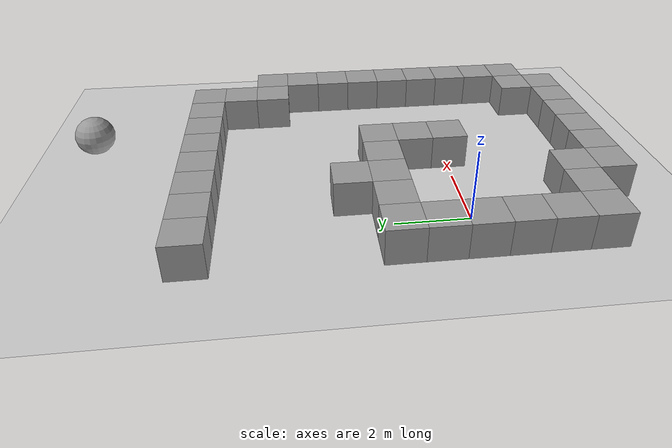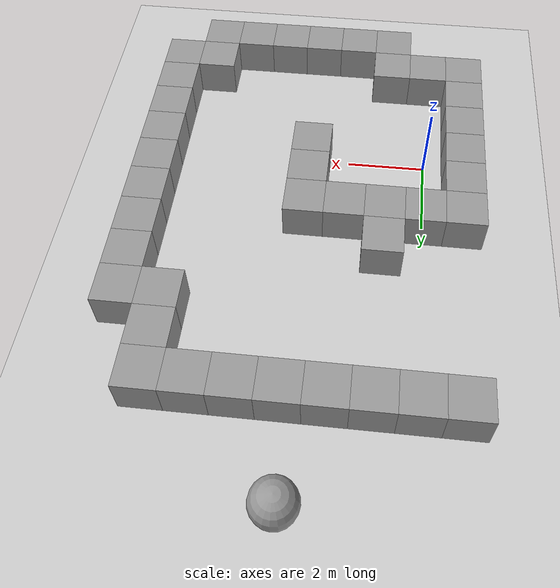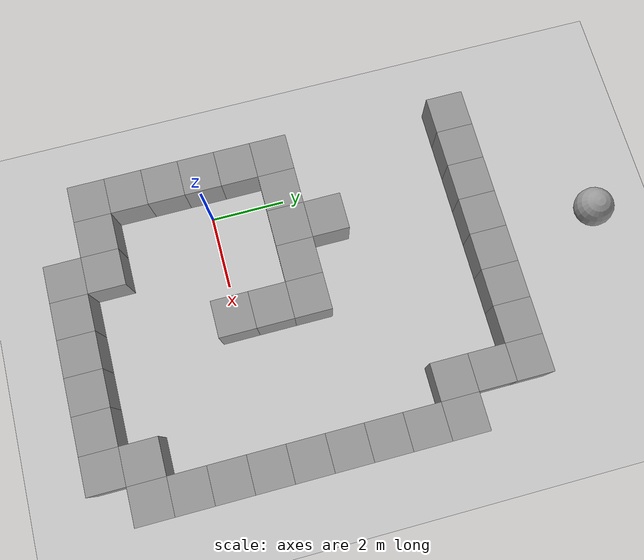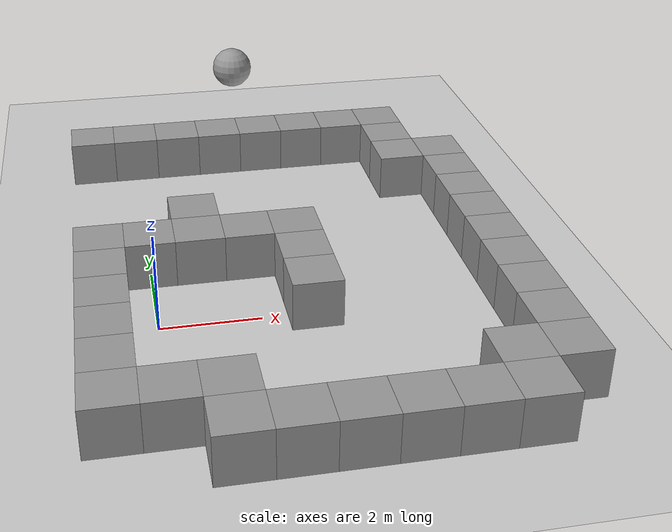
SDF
<sdf version="1.4">
 <world name="default">
  <light name="sun" type="directional">
   <pose>0 0 10 0 -0 0</pose>
   <diffuse>0.8 0.8 0.8 1</diffuse>
   <specular>0.2 0.2 0.2 1</specular>
   <attenuation>
    <range>1000</range>
    <constant>0.9</constant>
    <linear>0.01</linear>
    <quadratic>0.001</quadratic>
   </attenuation>
   <direction>-0.5 0.1 -0.9</direction>
  </light>
  <model name="ground_plane">
   <static>1</static>
   <link name="link">
    <collision name="collision">
     <geometry><plane><normal>0 0 1</normal><size>100 100</size></plane></geometry>
     <surface><friction><ode><mu>100</mu><mu2>50</mu2></ode></friction></surface>
    </collision>
    <visual name="visual">
     <cast_shadows>0</cast_shadows>
     <geometry><plane><normal>0 0 1</normal><size>100 100</size></plane></geometry>
     <material>
      <script><uri>file://media/materials/scripts/gazebo.material</uri><name>Gazebo/Grey</name></script>
     </material>
    </visual>
    <velocity_decay><linear>0</linear><angular>0</angular></velocity_decay>
   </link>
  </model>
  <physics type="ode">
   <max_step_size>0.001</max_step_size>
   <real_time_factor>1</real_time_factor>
   <real_time_update_rate>1000</real_time_update_rate>
   <gravity>0 0 -9.8</gravity>
  </physics>
  <scene><ambient>0.4 0.4 0.4 1</ambient><background>0.7 0.7 0.7 1</background><shadows>1</shadows></scene>
  <spherical_coordinates>
   <surface_model>EARTH_WGS84</surface_model>
   <latitude_deg>0</latitude_deg>
   <longitude_deg>0</longitude_deg>
   <elevation>0</elevation>
   <heading_deg>0</heading_deg>
  </spherical_coordinates>
  <model name="unit_box_4_0">
   <pose>-1 1.00001 0.5 0 -0 4e-06</pose>
   <link name="link">
    <inertial>
     <mass>1</mass>
     <inertia><ixx>1</ixx><ixy>0</ixy><ixz>0</ixz><iyy>1</iyy><iyz>0</iyz><izz>1</izz></inertia>
    </inertial>
    <collision name="collision"><geometry><box><size>1 1 1</size></box></geometry></collision>
    <visual name="visual">
     <geometry><box><size>1 1 1</size></box></geometry>
     <material>
      <script><uri>file://media/materials/scripts/gazebo.material</uri><name>Gazebo/Grey</name></script>
     </material>
    </visual>
    <velocity_decay><linear>0</linear><angular>0</angular></velocity_decay>
   </link>
   <static>1</static>
  </model>
  <model name="unit_box_5_0">
   <pose>-0.999998 5e-06 0.5 0 -0 2e-06</pose>
   <link name="link">
    <inertial>
     <mass>1</mass>
     <inertia><ixx>1</ixx><ixy>0</ixy><ixz>0</ixz><iyy>1</iyy><iyz>0</iyz><izz>1</izz></inertia>
    </inertial>
    <collision name="collision"><geometry><box><size>1 1 1</size></box></geometry></collision>
    <visual name="visual">
     <geometry><box><size>1 1 1</size></box></geometry>
     <material>
      <script><uri>file://media/materials/scripts/gazebo.material</uri><name>Gazebo/Grey</name></script>
     </material>
    </visual>
    <velocity_decay><linear>0</linear><angular>0</angular></velocity_decay>
   </link>
   <static>1</static>
  </model>
  <model name="unit_box_6_0">
   <pose>-0.999999 -0.999997 0.5 0 -0 1e-06</pose>
   <link name="link">
    <inertial>
     <mass>1</mass>
     <inertia><ixx>1</ixx><ixy>0</ixy><ixz>0</ixz><iyy>1</iyy><iyz>0</iyz><izz>1</izz></inertia>
    </inertial>
    <collision name="collision"><geometry><box><size>1 1 1</size></box></geometry></collision>
    <visual name="visual">
     <geometry><box><size>1 1 1</size></box></geometry>
     <material>
      <script><uri>file://media/materials/scripts/gazebo.material</uri><name>Gazebo/Grey</name></script>
     </material>
    </visual>
    <velocity_decay><linear>0</linear><angular>0</angular></velocity_decay>
   </link>
   <static>1</static>
  </model>
  <model name="unit_box_10_0">
   <pose>-1 2.00001 0.5 0 -0 5e-06</pose>
   <link name="link">
    <inertial>
     <mass>1</mass>
     <inertia><ixx>1</ixx><ixy>0</ixy><ixz>0</ixz><iyy>1</iyy><iyz>0</iyz><izz>1</izz></inertia>
    </inertial>
    <collision name="collision"><geometry><box><size>1 1 1</size></box></geometry></collision>
    <visual name="visual">
     <geometry><box><size>1 1 1</size></box></geometry>
     <material>
      <script><uri>file://media/materials/scripts/gazebo.material</uri><name>Gazebo/Grey</name></script>
     </material>
    </visual>
    <velocity_decay><linear>0</linear><angular>0</angular></velocity_decay>
   </link>
   <static>1</static>
  </model>
  <model name="unit_box_11_0">
   <pose>-0.999995 -2 0.5 0 -0 4e-06</pose>
   <link name="link">
    <inertial>
     <mass>1</mass>
     <inertia><ixx>1</ixx><ixy>0</ixy><ixz>0</ixz><iyy>1</iyy><iyz>0</iyz><izz>1</izz></inertia>
    </inertial>
    <collision name="collision"><geometry><box><size>1 1 1</size></box></geometry></collision>
    <visual name="visual">
     <geometry><box><size>1 1 1</size></box></geometry>
     <material>
      <script><uri>file://media/materials/scripts/gazebo.material</uri><name>Gazebo/Grey</name></script>
     </material>
    </visual>
    <velocity_decay><linear>0</linear><angular>0</angular></velocity_decay>
   </link>
   <static>1</static>
  </model>
  <model name="unit_box_12_0">
   <pose>-3e-06 2 0.5 0 -0 5e-06</pose>
   <link name="link">
    <inertial>
     <mass>1</mass>
     <inertia><ixx>1</ixx><ixy>0</ixy><ixz>0</ixz><iyy>1</iyy><iyz>0</iyz><izz>1</izz></inertia>
    </inertial>
    <collision name="collision"><geometry><box><size>1 1 1</size></box></geometry></collision>
    <visual name="visual">
     <geometry><box><size>1 1 1</size></box></geometry>
     <material>
      <script><uri>file://media/materials/scripts/gazebo.material</uri><name>Gazebo/Grey</name></script>
     </material>
    </visual>
    <velocity_decay><linear>0</linear><angular>0</angular></velocity_decay>
   </link>
   <static>1</static>
  </model>
  <model name="unit_box_13_0">
   <pose>0.999999 2 0.5 0 -0 2e-06</pose>
   <link name="link">
    <inertial>
     <mass>1</mass>
     <inertia><ixx>1</ixx><ixy>0</ixy><ixz>0</ixz><iyy>1</iyy><iyz>0</iyz><izz>1</izz></inertia>
    </inertial>
    <collision name="collision"><geometry><box><size>1 1 1</size></box></geometry></collision>
    <visual name="visual">
     <geometry><box><size>1 1 1</size></box></geometry>
     <material>
      <script><uri>file://media/materials/scripts/gazebo.material</uri><name>Gazebo/Grey</name></script>
     </material>
    </visual>
    <velocity_decay><linear>0</linear><angular>0</angular></velocity_decay>
   </link>
   <static>1</static>
  </model>
  <model name="unit_box_14_0">
   <pose>2 2 0.5 0 -0 2e-06</pose>
   <link name="link">
    <inertial>
     <mass>1</mass>
     <inertia><ixx>1</ixx><ixy>0</ixy><ixz>0</ixz><iyy>1</iyy><iyz>0</iyz><izz>1</izz></inertia>
    </inertial>
    <collision name="collision"><geometry><box><size>1 1 1</size></box></geometry></collision>
    <visual name="visual">
     <geometry><box><size>1 1 1</size></box></geometry>
     <material>
      <script><uri>file://media/materials/scripts/gazebo.material</uri><name>Gazebo/Grey</name></script>
     </material>
    </visual>
    <velocity_decay><linear>0</linear><angular>0</angular></velocity_decay>
   </link>
   <static>1</static>
  </model>
  <model name="unit_box_15_0">
   <pose>3 2 0.5 0 -0 1e-06</pose>
   <link name="link">
    <inertial>
     <mass>1</mass>
     <inertia><ixx>1</ixx><ixy>0</ixy><ixz>0</ixz><iyy>1</iyy><iyz>0</iyz><izz>1</izz></inertia>
    </inertial>
    <collision name="collision"><geometry><box><size>1 1 1</size></box></geometry></collision>
    <visual name="visual">
     <geometry><box><size>1 1 1</size></box></geometry>
     <material>
      <script><uri>file://media/materials/scripts/gazebo.material</uri><name>Gazebo/Grey</name></script>
     </material>
    </visual>
    <velocity_decay><linear>0</linear><angular>0</angular></velocity_decay>
   </link>
   <static>1</static>
  </model>
  <model name="unit_box_16">
   <pose>3 0.999999 0.5 0 -0 0</pose>
   <link name="link">
    <inertial>
     <mass>1</mass>
     <inertia><ixx>1</ixx><ixy>0</ixy><ixz>0</ixz><iyy>1</iyy><iyz>0</iyz><izz>1</izz></inertia>
    </inertial>
    <collision name="collision"><geometry><box><size>1 1 1</size></box></geometry></collision>
    <visual name="visual">
     <geometry><box><size>1 1 1</size></box></geometry>
     <material>
      <script><uri>file://media/materials/scripts/gazebo.material</uri><name>Gazebo/Grey</name></script>
     </material>
    </visual>
    <velocity_decay><linear>0</linear><angular>0</angular></velocity_decay>
   </link>
   <static>1</static>
  </model>
  <model name="unit_box_17_0">
   <pose>3 -2e-06 0.5 0 -0 1e-06</pose>
   <link name="link">
    <inertial>
     <mass>1</mass>
     <inertia><ixx>1</ixx><ixy>0</ixy><ixz>0</ixz><iyy>1</iyy><iyz>0</iyz><izz>1</izz></inertia>
    </inertial>
    <collision name="collision"><geometry><box><size>1 1 1</size></box></geometry></collision>
    <visual name="visual">
     <geometry><box><size>1 1 1</size></box></geometry>
     <material>
      <script><uri>file://media/materials/scripts/gazebo.material</uri><name>Gazebo/Grey</name></script>
     </material>
    </visual>
    <velocity_decay><linear>0</linear><angular>0</angular></velocity_decay>
   </link>
   <static>1</static>
  </model>
  <model name="unit_box_18_0">
   <pose>-1.00001 -3 0.5 0 -0 3e-06</pose>
   <link name="link">
    <inertial>
     <mass>1</mass>
     <inertia><ixx>1</ixx><ixy>0</ixy><ixz>0</ixz><iyy>1</iyy><iyz>0</iyz><izz>1</izz></inertia>
    </inertial>
    <collision name="collision"><geometry><box><size>1 1 1</size></box></geometry></collision>
    <visual name="visual">
     <geometry><box><size>1 1 1</size></box></geometry>
     <material>
      <script><uri>file://media/materials/scripts/gazebo.material</uri><name>Gazebo/Grey</name></script>
     </material>
    </visual>
    <velocity_decay><linear>0</linear><angular>0</angular></velocity_decay>
   </link>
   <static>1</static>
  </model>
  <model name="unit_box_19_0">
   <pose>-6e-06 -3 0.5 0 -0 4e-06</pose>
   <link name="link">
    <inertial>
     <mass>1</mass>
     <inertia><ixx>1</ixx><ixy>0</ixy><ixz>0</ixz><iyy>1</iyy><iyz>0</iyz><izz>1</izz></inertia>
    </inertial>
    <collision name="collision"><geometry><box><size>1 1 1</size></box></geometry></collision>
    <visual name="visual">
     <geometry><box><size>1 1 1</size></box></geometry>
     <material>
      <script><uri>file://media/materials/scripts/gazebo.material</uri><name>Gazebo/Grey</name></script>
     </material>
    </visual>
    <velocity_decay><linear>0</linear><angular>0</angular></velocity_decay>
   </link>
   <static>1</static>
  </model>
  <model name="unit_box_20_0">
   <pose>0.999995 -3 0.5 0 -0 5e-06</pose>
   <link name="link">
    <inertial>
     <mass>1</mass>
     <inertia><ixx>1</ixx><ixy>0</ixy><ixz>0</ixz><iyy>1</iyy><iyz>0</iyz><izz>1</izz></inertia>
    </inertial>
    <collision name="collision"><geometry><box><size>1 1 1</size></box></geometry></collision>
    <visual name="visual">
     <geometry><box><size>1 1 1</size></box></geometry>
     <material>
      <script><uri>file://media/materials/scripts/gazebo.material</uri><name>Gazebo/Grey</name></script>
     </material>
    </visual>
    <velocity_decay><linear>0</linear><angular>0</angular></velocity_decay>
   </link>
   <static>1</static>
  </model>
  <model name="unit_box_21_0">
   <pose>0.999993 -4.00001 0.5 0 -0 2e-06</pose>
   <link name="link">
    <inertial>
     <mass>1</mass>
     <inertia><ixx>1</ixx><ixy>0</ixy><ixz>0</ixz><iyy>1</iyy><iyz>0</iyz><izz>1</izz></inertia>
    </inertial>
    <collision name="collision"><geometry><box><size>1 1 1</size></box></geometry></collision>
    <visual name="visual">
     <geometry><box><size>1 1 1</size></box></geometry>
     <material>
      <script><uri>file://media/materials/scripts/gazebo.material</uri><name>Gazebo/Grey</name></script>
     </material>
    </visual>
    <velocity_decay><linear>0</linear><angular>0</angular></velocity_decay>
   </link>
   <static>1</static>
  </model>
  <model name="unit_box_22">
   <pose>2 -4 0.5 0 -0 1e-06</pose>
   <link name="link">
    <inertial>
     <mass>1</mass>
     <inertia><ixx>1</ixx><ixy>0</ixy><ixz>0</ixz><iyy>1</iyy><iyz>0</iyz><izz>1</izz></inertia>
    </inertial>
    <collision name="collision"><geometry><box><size>1 1 1</size></box></geometry></collision>
    <visual name="visual">
     <geometry><box><size>1 1 1</size></box></geometry>
     <material>
      <script><uri>file://media/materials/scripts/gazebo.material</uri><name>Gazebo/Grey</name></script>
     </material>
    </visual>
    <velocity_decay><linear>0</linear><angular>0</angular></velocity_decay>
   </link>
   <static>1</static>
  </model>
  <model name="unit_box_23_0">
   <pose>3 -4 0.5 0 0 -1e-06</pose>
   <link name="link">
    <inertial>
     <mass>1</mass>
     <inertia><ixx>1</ixx><ixy>0</ixy><ixz>0</ixz><iyy>1</iyy><iyz>0</iyz><izz>1</izz></inertia>
    </inertial>
    <collision name="collision"><geometry><box><size>1 1 1</size></box></geometry></collision>
    <visual name="visual">
     <geometry><box><size>1 1 1</size></box></geometry>
     <material>
      <script><uri>file://media/materials/scripts/gazebo.material</uri><name>Gazebo/Grey</name></script>
     </material>
    </visual>
    <velocity_decay><linear>0</linear><angular>0</angular></velocity_decay>
   </link>
   <static>1</static>
  </model>
  <model name="unit_box_24_0">
   <pose>4 -4 0.5 0 0 -1e-06</pose>
   <link name="link">
    <inertial>
     <mass>1</mass>
     <inertia><ixx>1</ixx><ixy>0</ixy><ixz>0</ixz><iyy>1</iyy><iyz>0</iyz><izz>1</izz></inertia>
    </inertial>
    <collision name="collision"><geometry><box><size>1 1 1</size></box></geometry></collision>
    <visual name="visual">
     <geometry><box><size>1 1 1</size></box></geometry>
     <material>
      <script><uri>file://media/materials/scripts/gazebo.material</uri><name>Gazebo/Grey</name></script>
     </material>
    </visual>
    <velocity_decay><linear>0</linear><angular>0</angular></velocity_decay>
   </link>
   <static>1</static>
  </model>
  <model name="unit_box_25_0">
   <pose>5 -4.00001 0.5 0 0 -3e-06</pose>
   <link name="link">
    <inertial>
     <mass>1</mass>
     <inertia><ixx>1</ixx><ixy>0</ixy><ixz>0</ixz><iyy>1</iyy><iyz>0</iyz><izz>1</izz></inertia>
    </inertial>
    <collision name="collision"><geometry><box><size>1 1 1</size></box></geometry></collision>
    <visual name="visual">
     <geometry><box><size>1 1 1</size></box></geometry>
     <material>
      <script><uri>file://media/materials/scripts/gazebo.material</uri><name>Gazebo/Grey</name></script>
     </material>
    </visual>
    <velocity_decay><linear>0</linear><angular>0</angular></velocity_decay>
   </link>
   <static>1</static>
  </model>
  <model name="unit_box_26_0">
   <pose>6 -4 0.5 0 0 -3e-06</pose>
   <link name="link">
    <inertial>
     <mass>1</mass>
     <inertia><ixx>1</ixx><ixy>0</ixy><ixz>0</ixz><iyy>1</iyy><iyz>0</iyz><izz>1</izz></inertia>
    </inertial>
    <collision name="collision"><geometry><box><size>1 1 1</size></box></geometry></collision>
    <visual name="visual">
     <geometry><box><size>1 1 1</size></box></geometry>
     <material>
      <script><uri>file://media/materials/scripts/gazebo.material</uri><name>Gazebo/Grey</name></script>
     </material>
    </visual>
    <velocity_decay><linear>0</linear><angular>0</angular></velocity_decay>
   </link>
   <static>1</static>
  </model>
  <model name="unit_box_27_0">
   <pose>6 -2.99999 0.5 0 0 -7e-06</pose>
   <link name="link">
    <inertial>
     <mass>1</mass>
     <inertia><ixx>1</ixx><ixy>0</ixy><ixz>0</ixz><iyy>1</iyy><iyz>0</iyz><izz>1</izz></inertia>
    </inertial>
    <collision name="collision"><geometry><box><size>1 1 1</size></box></geometry></collision>
    <visual name="visual">
     <geometry><box><size>1 1 1</size></box></geometry>
     <material>
      <script><uri>file://media/materials/scripts/gazebo.material</uri><name>Gazebo/Grey</name></script>
     </material>
    </visual>
    <velocity_decay><linear>0</linear><angular>0</angular></velocity_decay>
   </link>
   <static>1</static>
  </model>
  <model name="unit_box_28_0">
   <pose>7 -3 0.5 0 0 -4e-06</pose>
   <link name="link">
    <inertial>
     <mass>1</mass>
     <inertia><ixx>1</ixx><ixy>0</ixy><ixz>0</ixz><iyy>1</iyy><iyz>0</iyz><izz>1</izz></inertia>
    </inertial>
    <collision name="collision"><geometry><box><size>1 1 1</size></box></geometry></collision>
    <visual name="visual">
     <geometry><box><size>1 1 1</size></box></geometry>
     <material>
      <script><uri>file://media/materials/scripts/gazebo.material</uri><name>Gazebo/Grey</name></script>
     </material>
    </visual>
    <velocity_decay><linear>0</linear><angular>0</angular></velocity_decay>
   </link>
   <static>1</static>
  </model>
  <model name="unit_box_29_0">
   <pose>6.99998 -1.99999 0.5 0 0 -2e-06</pose>
   <link name="link">
    <inertial>
     <mass>1</mass>
     <inertia><ixx>1</ixx><ixy>0</ixy><ixz>0</ixz><iyy>1</iyy><iyz>0</iyz><izz>1</izz></inertia>
    </inertial>
    <collision name="collision"><geometry><box><size>1 1 1</size></box></geometry></collision>
    <visual name="visual">
     <geometry><box><size>1 1 1</size></box></geometry>
     <material>
      <script><uri>file://media/materials/scripts/gazebo.material</uri><name>Gazebo/Grey</name></script>
     </material>
    </visual>
    <velocity_decay><linear>0</linear><angular>0</angular></velocity_decay>
   </link>
   <static>1</static>
  </model>
  <model name="unit_box_30_0">
   <pose>6.99999 -0.999995 0.5 0 0 -2e-06</pose>
   <link name="link">
    <inertial>
     <mass>1</mass>
     <inertia><ixx>1</ixx><ixy>0</ixy><ixz>0</ixz><iyy>1</iyy><iyz>0</iyz><izz>1</izz></inertia>
    </inertial>
    <collision name="collision"><geometry><box><size>1 1 1</size></box></geometry></collision>
    <visual name="visual">
     <geometry><box><size>1 1 1</size></box></geometry>
     <material>
      <script><uri>file://media/materials/scripts/gazebo.material</uri><name>Gazebo/Grey</name></script>
     </material>
    </visual>
    <velocity_decay><linear>0</linear><angular>0</angular></velocity_decay>
   </link>
   <static>1</static>
  </model>
  <model name="unit_box_31_0">
   <pose>6.99998 6e-06 0.5 0 0 -2e-06</pose>
   <link name="link">
    <inertial>
     <mass>1</mass>
     <inertia><ixx>1</ixx><ixy>0</ixy><ixz>0</ixz><iyy>1</iyy><iyz>0</iyz><izz>1</izz></inertia>
    </inertial>
    <collision name="collision"><geometry><box><size>1 1 1</size></box></geometry></collision>
    <visual name="visual">
     <geometry><box><size>1 1 1</size></box></geometry>
     <material>
      <script><uri>file://media/materials/scripts/gazebo.material</uri><name>Gazebo/Grey</name></script>
     </material>
    </visual>
    <velocity_decay><linear>0</linear><angular>0</angular></velocity_decay>
   </link>
   <static>1</static>
  </model>
  <model name="unit_box_32_0">
   <pose>6.99999 1.00001 0.5 0 0 -2e-06</pose>
   <link name="link">
    <inertial>
     <mass>1</mass>
     <inertia><ixx>1</ixx><ixy>0</ixy><ixz>0</ixz><iyy>1</iyy><iyz>0</iyz><izz>1</izz></inertia>
    </inertial>
    <collision name="collision"><geometry><box><size>1 1 1</size></box></geometry></collision>
    <visual name="visual">
     <geometry><box><size>1 1 1</size></box></geometry>
     <material>
      <script><uri>file://media/materials/scripts/gazebo.material</uri><name>Gazebo/Grey</name></script>
     </material>
    </visual>
    <velocity_decay><linear>0</linear><angular>0</angular></velocity_decay>
   </link>
   <static>1</static>
  </model>
  <model name="unit_box_33">
   <pose>6.99999 2.00001 0.5 0 0 -2e-06</pose>
   <link name="link">
    <inertial>
     <mass>1</mass>
     <inertia><ixx>1</ixx><ixy>0</ixy><ixz>0</ixz><iyy>1</iyy><iyz>0</iyz><izz>1</izz></inertia>
    </inertial>
    <collision name="collision"><geometry><box><size>1 1 1</size></box></geometry></collision>
    <visual name="visual">
     <geometry><box><size>1 1 1</size></box></geometry>
     <material>
      <script><uri>file://media/materials/scripts/gazebo.material</uri><name>Gazebo/Grey</name></script>
     </material>
    </visual>
    <velocity_decay><linear>0</linear><angular>0</angular></velocity_decay>
   </link>
   <static>1</static>
  </model>
  <model name="unit_box_34_0">
   <pose>6.99999 3.00001 0.5 0 0 -2e-06</pose>
   <link name="link">
    <inertial>
     <mass>1</mass>
     <inertia><ixx>1</ixx><ixy>0</ixy><ixz>0</ixz><iyy>1</iyy><iyz>0</iyz><izz>1</izz></inertia>
    </inertial>
    <collision name="collision"><geometry><box><size>1 1 1</size></box></geometry></collision>
    <visual name="visual">
     <geometry><box><size>1 1 1</size></box></geometry>
     <material>
      <script><uri>file://media/materials/scripts/gazebo.material</uri><name>Gazebo/Grey</name></script>
     </material>
    </visual>
    <velocity_decay><linear>0</linear><angular>0</angular></velocity_decay>
   </link>
   <static>1</static>
  </model>
  <model name="unit_box_35_0">
   <pose>7 4.00001 0.5 0 0 -2e-06</pose>
   <link name="link">
    <inertial>
     <mass>1</mass>
     <inertia><ixx>1</ixx><ixy>0</ixy><ixz>0</ixz><iyy>1</iyy><iyz>0</iyz><izz>1</izz></inertia>
    </inertial>
    <collision name="collision"><geometry><box><size>1 1 1</size></box></geometry></collision>
    <visual name="visual">
     <geometry><box><size>1 1 1</size></box></geometry>
     <material>
      <script><uri>file://media/materials/scripts/gazebo.material</uri><name>Gazebo/Grey</name></script>
     </material>
    </visual>
    <velocity_decay><linear>0</linear><angular>0</angular></velocity_decay>
   </link>
   <static>1</static>
  </model>
  <model name="unit_box_36_0">
   <pose>7 5.00001 0.499996 3e-06 -4e-06 -5e-06</pose>
   <link name="link">
    <inertial>
     <mass>1</mass>
     <inertia><ixx>1</ixx><ixy>0</ixy><ixz>0</ixz><iyy>1</iyy><iyz>0</iyz><izz>1</izz></inertia>
    </inertial>
    <collision name="collision"><geometry><box><size>1 1 1</size></box></geometry></collision>
    <visual name="visual">
     <geometry><box><size>1 1 1</size></box></geometry>
     <material>
      <script><uri>file://media/materials/scripts/gazebo.material</uri><name>Gazebo/Grey</name></script>
     </material>
    </visual>
    <velocity_decay><linear>0</linear><angular>0</angular></velocity_decay>
   </link>
   <static>1</static>
  </model>
  <model name="unit_box_37_0">
   <pose>6 5 0.5 0 0 -8e-06</pose>
   <link name="link">
    <inertial>
     <mass>1</mass>
     <inertia><ixx>1</ixx><ixy>0</ixy><ixz>0</ixz><iyy>1</iyy><iyz>0</iyz><izz>1</izz></inertia>
    </inertial>
    <collision name="collision"><geometry><box><size>1 1 1</size></box></geometry></collision>
    <visual name="visual">
     <geometry><box><size>1 1 1</size></box></geometry>
     <material>
      <script><uri>file://media/materials/scripts/gazebo.material</uri><name>Gazebo/Grey</name></script>
     </material>
    </visual>
    <velocity_decay><linear>0</linear><angular>0</angular></velocity_decay>
   </link>
   <static>1</static>
  </model>
  <model name="unit_box_38_0">
   <pose>6 6 0.5 0 0 -1.3e-05</pose>
   <link name="link">
    <inertial>
     <mass>1</mass>
     <inertia><ixx>1</ixx><ixy>0</ixy><ixz>0</ixz><iyy>1</iyy><iyz>0</iyz><izz>1</izz></inertia>
    </inertial>
    <collision name="collision"><geometry><box><size>1 1 1</size></box></geometry></collision>
    <visual name="visual">
     <geometry><box><size>1 1 1</size></box></geometry>
     <material>
      <script><uri>file://media/materials/scripts/gazebo.material</uri><name>Gazebo/Grey</name></script>
     </material>
    </visual>
    <velocity_decay><linear>0</linear><angular>0</angular></velocity_decay>
   </link>
   <static>1</static>
  </model>
  <model name="unit_box_39_0">
   <pose>6.00001 7 0.5 0 0 -8e-06</pose>
   <link name="link">
    <inertial>
     <mass>1</mass>
     <inertia><ixx>1</ixx><ixy>0</ixy><ixz>0</ixz><iyy>1</iyy><iyz>0</iyz><izz>1</izz></inertia>
    </inertial>
    <collision name="collision"><geometry><box><size>1 1 1</size></box></geometry></collision>
    <visual name="visual">
     <geometry><box><size>1 1 1</size></box></geometry>
     <material>
      <script><uri>file://media/materials/scripts/gazebo.material</uri><name>Gazebo/Grey</name></script>
     </material>
    </visual>
    <velocity_decay><linear>0</linear><angular>0</angular></velocity_decay>
   </link>
   <static>1</static>
  </model>
  <model name="unit_box_40_0">
   <pose>5.00001 6.99999 0.5 0 0 -7e-06</pose>
   <link name="link">
    <inertial>
     <mass>1</mass>
     <inertia><ixx>1</ixx><ixy>0</ixy><ixz>0</ixz><iyy>1</iyy><iyz>0</iyz><izz>1</izz></inertia>
    </inertial>
    <collision name="collision"><geometry><box><size>1 1 1</size></box></geometry></collision>
    <visual name="visual">
     <geometry><box><size>1 1 1</size></box></geometry>
     <material>
      <script><uri>file://media/materials/scripts/gazebo.material</uri><name>Gazebo/Grey</name></script>
     </material>
    </visual>
    <velocity_decay><linear>0</linear><angular>0</angular></velocity_decay>
   </link>
   <static>1</static>
  </model>
  <model name="unit_box_41">
   <pose>4 6.99999 0.5 0 0 -2e-06</pose>
   <link name="link">
    <inertial>
     <mass>1</mass>
     <inertia><ixx>1</ixx><ixy>0</ixy><ixz>0</ixz><iyy>1</iyy><iyz>0</iyz><izz>1</izz></inertia>
    </inertial>
    <collision name="collision"><geometry><box><size>1 1 1</size></box></geometry></collision>
    <visual name="visual">
     <geometry><box><size>1 1 1</size></box></geometry>
     <material>
      <script><uri>file://media/materials/scripts/gazebo.material</uri><name>Gazebo/Grey</name></script>
     </material>
    </visual>
    <velocity_decay><linear>0</linear><angular>0</angular></velocity_decay>
   </link>
   <static>1</static>
  </model>
  <model name="unit_box_42">
   <pose>3 6.99999 0.5 0 0 -2e-06</pose>
   <link name="link">
    <inertial>
     <mass>1</mass>
     <inertia><ixx>1</ixx><ixy>0</ixy><ixz>0</ixz><iyy>1</iyy><iyz>0</iyz><izz>1</izz></inertia>
    </inertial>
    <collision name="collision"><geometry><box><size>1 1 1</size></box></geometry></collision>
    <visual name="visual">
     <geometry><box><size>1 1 1</size></box></geometry>
     <material>
      <script><uri>file://media/materials/scripts/gazebo.material</uri><name>Gazebo/Grey</name></script>
     </material>
    </visual>
    <velocity_decay><linear>0</linear><angular>0</angular></velocity_decay>
   </link>
   <static>1</static>
  </model>
  <model name="unit_box_43">
   <pose>2 6.99999 0.5 0 0 -2e-06</pose>
   <link name="link">
    <inertial>
     <mass>1</mass>
     <inertia><ixx>1</ixx><ixy>0</ixy><ixz>0</ixz><iyy>1</iyy><iyz>0</iyz><izz>1</izz></inertia>
    </inertial>
    <collision name="collision"><geometry><box><size>1 1 1</size></box></geometry></collision>
    <visual name="visual">
     <geometry><box><size>1 1 1</size></box></geometry>
     <material>
      <script><uri>file://media/materials/scripts/gazebo.material</uri><name>Gazebo/Grey</name></script>
     </material>
    </visual>
    <velocity_decay><linear>0</linear><angular>0</angular></velocity_decay>
   </link>
   <static>1</static>
  </model>
  <model name="unit_box_44">
   <pose>1 6.99998 0.5 0 0 -1e-06</pose>
   <link name="link">
    <inertial>
     <mass>1</mass>
     <inertia><ixx>1</ixx><ixy>0</ixy><ixz>0</ixz><iyy>1</iyy><iyz>0</iyz><izz>1</izz></inertia>
    </inertial>
    <collision name="collision"><geometry><box><size>1 1 1</size></box></geometry></collision>
    <visual name="visual">
     <geometry><box><size>1 1 1</size></box></geometry>
     <material>
      <script><uri>file://media/materials/scripts/gazebo.material</uri><name>Gazebo/Grey</name></script>
     </material>
    </visual>
    <velocity_decay><linear>0</linear><angular>0</angular></velocity_decay>
   </link>
   <static>1</static>
  </model>
  <model name="unit_box_45">
   <pose>0 7 0.5 0 -0 1e-06</pose>
   <link name="link">
    <inertial>
     <mass>1</mass>
     <inertia><ixx>1</ixx><ixy>0</ixy><ixz>0</ixz><iyy>1</iyy><iyz>0</iyz><izz>1</izz></inertia>
    </inertial>
    <collision name="collision"><geometry><box><size>1 1 1</size></box></geometry></collision>
    <visual name="visual">
     <geometry><box><size>1 1 1</size></box></geometry>
     <material>
      <script><uri>file://media/materials/scripts/gazebo.material</uri><name>Gazebo/Grey</name></script>
     </material>
    </visual>
    <velocity_decay><linear>0</linear><angular>0</angular></velocity_decay>
   </link>
   <static>1</static>
  </model>
  <model name="unit_box_46">
   <pose>-1 7 0.5 0 -0 1e-06</pose>
   <link name="link">
    <inertial>
     <mass>1</mass>
     <inertia><ixx>1</ixx><ixy>0</ixy><ixz>0</ixz><iyy>1</iyy><iyz>0</iyz><izz>1</izz></inertia>
    </inertial>
    <collision name="collision"><geometry><box><size>1 1 1</size></box></geometry></collision>
    <visual name="visual">
     <geometry><box><size>1 1 1</size></box></geometry>
     <material>
      <script><uri>file://media/materials/scripts/gazebo.material</uri><name>Gazebo/Grey</name></script>
     </material>
    </visual>
    <velocity_decay><linear>0</linear><angular>0</angular></velocity_decay>
   </link>
   <static>1</static>
  </model>
  <model name="unit_box_47">
   <pose>1 3 0.5 0 -0 0</pose>
   <link name="link">
    <inertial>
     <mass>1</mass>
     <inertia><ixx>1</ixx><ixy>0</ixy><ixz>0</ixz><iyy>1</iyy><iyz>0</iyz><izz>1</izz></inertia>
    </inertial>
    <collision name="collision"><geometry><box><size>1 1 1</size></box></geometry></collision>
    <visual name="visual">
     <geometry><box><size>1 1 1</size></box></geometry>
     <material>
      <script><uri>file://media/materials/scripts/gazebo.material</uri><name>Gazebo/Grey</name></script>
     </material>
    </visual>
    <velocity_decay><linear>0</linear><angular>0</angular></velocity_decay>
   </link>
   <static>1</static>
  </model>
  <model name="unit_sphere_1">
   <pose>2.74465 9.65922 1.52557 0 -0 0</pose>
   <link name="link">
    <inertial>
     <mass>1</mass>
     <inertia><ixx>1</ixx><ixy>0</ixy><ixz>0</ixz><iyy>1</iyy><iyz>0</iyz><izz>1</izz></inertia>
    </inertial>
    <collision name="collision"><geometry><sphere><radius>1.52558</radius></sphere></geometry></collision>
    <visual name="visual">
     <geometry><sphere><radius>0.5</radius></sphere></geometry>
     <material>
      <script><uri>file://media/materials/scripts/gazebo.material</uri><name>Gazebo/Grey</name></script>
     </material>
    </visual>
    <velocity_decay><linear>0</linear><angular>0</angular></velocity_decay>
   </link>
   <static>0</static>
  </model>
 </world>
</sdf>
